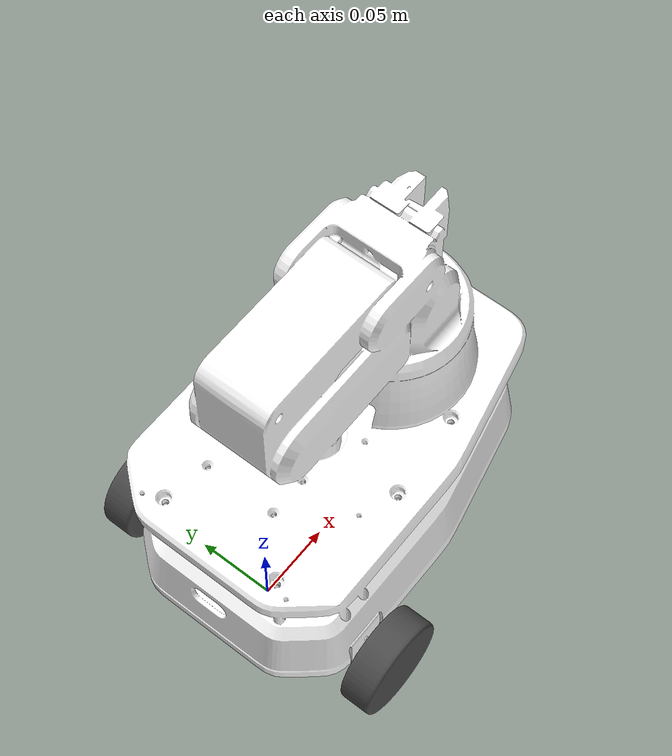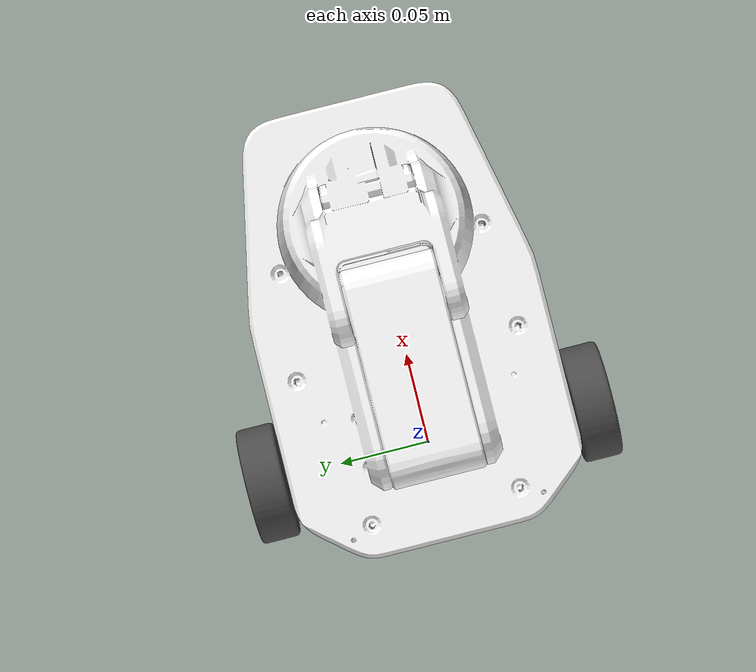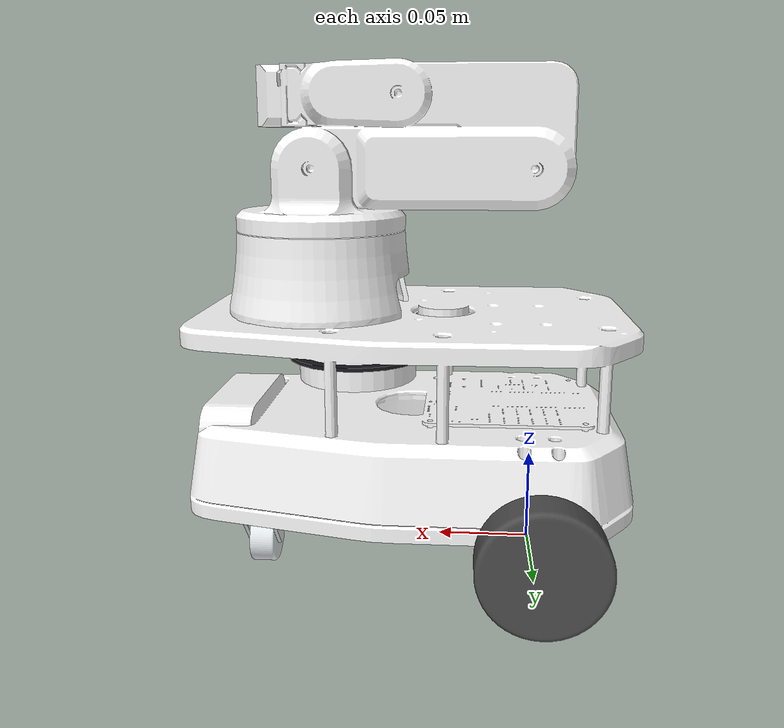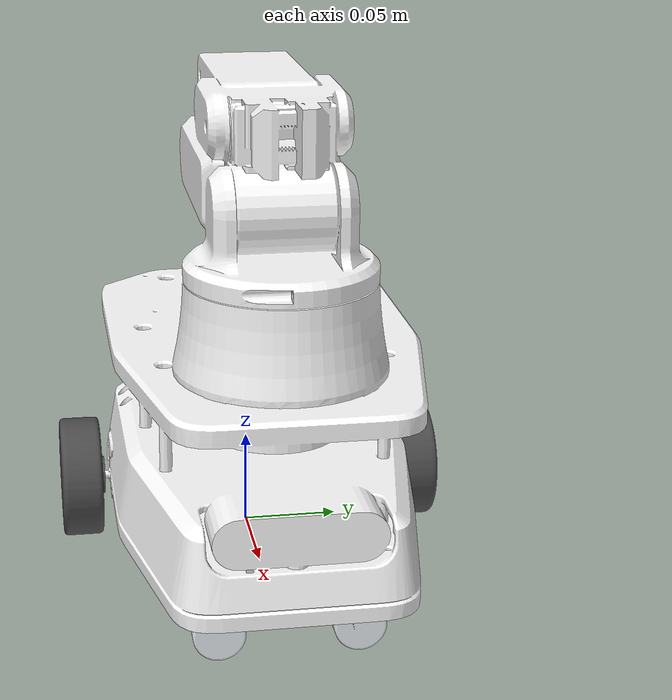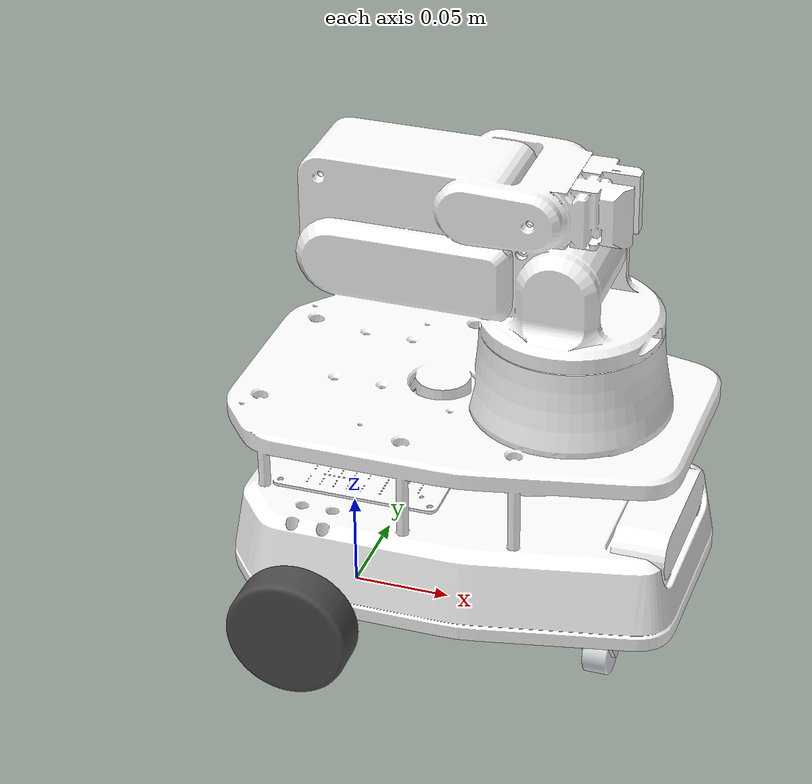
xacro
<?xml version="1.0"?>

<robot name="xc_urdf" xmlns:xacro="http://www.ros.org/wiki/xacro">

  <!-- ==========================================================================
       物理参数：量完改这里，整个模型跟着变
       ========================================================================== -->

  <!-- ── 后驱动轮（差速轮，一对）────────────────────────────────────────────── -->
  <xacro:property name="wheel_radius"     value="0.0315"/>  <!-- 半径。CAD 实测直径 63mm -->
  <xacro:property name="wheel_width"      value="0.023"/>   <!-- 轮宽 23mm -->
  <xacro:property name="wheel_separation" value="0.180"/>   <!-- 左右轮中心距 = 轮距。
                                                                 文档里长期标着「没测过」，
                                                                 这是 CAD 里的值，仍建议推车复核 -->

  <!-- ── 前小轮（一对，从动）────────────────────────────────────────────────── -->
  <xacro:property name="front_wheel_radius" value="0.0125"/> <!-- 滚动半径。轴心离地 12.5mm -->
  <xacro:property name="front_wheel_x"      value="0.142"/>  <!-- 在轴心中点前面的距离 -->
  <xacro:property name="front_wheel_y"      value="0.0335"/> <!-- 左右各偏多少 -->

  <!-- ── base_link 的原点位置 ──────────────────────────────────────────────────
       定在「两驱动轮轴心连线的中点」的**正下方地面上**。x/y 直接为 0（轴心就是
       原点），唯一需要换算的是 CAD 坐标系相对它的偏移。                        -->
  <xacro:property name="chassis_offset_x" value="0.065"/>   <!-- CAD 原点在 base_link 的 +x 方 -->
  <xacro:property name="chassis_offset_z" value="-0.005"/>  <!-- CAD 原点比地面低 5mm -->

  <xacro:property name="laser_x"    value="0.0956"/>
  <xacro:property name="laser_y"    value="0.0"/>
  <xacro:property name="laser_z"    value="0.1075"/>
  <xacro:property name="laser_roll" value="${pi}"/>
  <xacro:property name="laser_yaw"  value="0.0"/>

  <!-- ==========================================================================
       base_link：不画东西的纯参考系
       ========================================================================== -->

  <link name="base_link"/>

  <!-- ==========================================================================
       车体：SolidWorks 的 base_link.STL
       ========================================================================== -->

  <link name="chassis">
    <visual>
      <!-- +0.11 是 SolidWorks 原件里就有的视觉偏移，实测正确：加上它轮子才着地 -->
      <origin xyz="0 0 0.11" rpy="0 0 0"/>
      <geometry>
        <mesh filename="package://xc_urdf/meshes/base_link.STL"/>
      </geometry>
      <material name="chassis_gray">
        <color rgba="1 1 1 1"/>
      </material>
    </visual>
    <collision>
      <origin xyz="0 0 0.11" rpy="0 0 0"/>
      <geometry>
        <mesh filename="package://xc_urdf/meshes/base_link.STL"/>
      </geometry>
    </collision>
    <!-- 惯性块原样搬过来。chassis 的坐标系就是 CAD 坐标系，数字不用换算。
         注意：这是 SolidWorks 算出来的近似值，拿来做 rviz 可视化足够了；
         真要上物理仿真得重新标。 -->
    <inertial>
      <origin xyz="-0.00197167480169581 -0.000122347580332399 0.00828700108635093" rpy="0 0 0"/>
      <mass value="1.38347431367086"/>
      <inertia ixx="0.00146738564724886" ixy="-3.42395260263996E-06" ixz="-1.50060721917905E-05"
               iyy="0.00272256204808231"   iyz="2.6934971330369E-06"  izz="0.00387596146259179"/>
    </inertial>
  </link>

  <joint name="chassis_joint" type="fixed">
    <origin xyz="${chassis_offset_x} 0 ${chassis_offset_z}" rpy="0 0 0"/>
    <parent link="base_link"/>
    <child link="chassis"/>
  </joint>

  <!-- ==========================================================================
       后驱动轮 —— 差速转向的两个轮子，可动
       ========================================================================== -->

  <!-- 左轮 -->
  <link name="wheel_left">
    <visual>
      <origin xyz="0 0 0" rpy="0 0 0"/>
      <geometry>
        <mesh filename="package://xc_urdf/meshes/Empty_Link3.STL"/>
      </geometry>
      <material name="wheel_dark">
        <color rgba="0.298039215686275 0.298039215686275 0.298039215686275 1"/>
      </material>
    </visual>
    <collision>
      <origin xyz="0 0 0" rpy="0 0 0"/>
      <geometry>
        <mesh filename="package://xc_urdf/meshes/Empty_Link3.STL"/>
      </geometry>
    </collision>
    <inertial>
      <origin xyz="0.000000319437892623564 -0.0000893711913050599 0.000000230903450500544" rpy="0 0 0"/>
      <mass value="0.0758772106233843"/>
      <inertia ixx="2.14000230411095E-05"  ixy="-8.97611419511614E-12" ixz="-7.09406194543137E-10"
               iyy="3.71665775309804E-05"  iyz="5.99767599321799E-12"  izz="2.14003516816011E-05"/>
    </inertial>
  </link>

  <joint name="wheel_left_joint" type="continuous">
    <!-- 轴心就在 base_link 原点的正上方一个轮半径处 -->
    <origin xyz="0 ${wheel_separation/2} ${wheel_radius}" rpy="0 0 0"/>
    <parent link="base_link"/>
    <child link="wheel_left"/>
    <!-- 绕 y 转 = 向前滚。正转车前进，和固件同号 -->
    <axis xyz="0 1 0"/>
  </joint>

  <!-- 右轮 -->
  <link name="wheel_right">
    <visual>
      <origin xyz="0 0 0" rpy="1.5707963267949 0 0"/>
      <geometry>
        <mesh filename="package://xc_urdf/meshes/Empty_Link4.STL"/>
      </geometry>
      <material name="wheel_dark">
        <color rgba="0.298039215686275 0.298039215686275 0.298039215686275 1"/>
      </material>
    </visual>
    <collision>
      <origin xyz="0 0 0" rpy="1.5707963267949 0 0"/>
      <geometry>
        <mesh filename="package://xc_urdf/meshes/Empty_Link4.STL"/>
      </geometry>
    </collision>
    <inertial>
      <origin xyz="0.000000289018891222459 0.00000026800196192096 -0.0000893711913050599" rpy="0 0 0"/>
      <mass value="0.0758772106233844"/>
      <inertia ixx="2.14000664475817E-05"  ixy="-7.1807948817931E-10"  ixz="4.12261279556443E-12"
               iyy="2.14003082751291E-05"  iyz="-9.977314567107E-12"   izz="3.71665775309805E-05"/>
    </inertial>
  </link>

  <joint name="wheel_right_joint" type="continuous">
    <origin xyz="0 ${-wheel_separation/2} ${wheel_radius}" rpy="0 0 0"/>
    <parent link="base_link"/>
    <child link="wheel_right"/>
    <axis xyz="0 1 0"/>
  </joint>

  <link name="front_wheel_left">
    <visual>
      <origin xyz="0 0 0" rpy="0 0 0"/>
      <geometry>
        <mesh filename="package://xc_urdf/meshes/Empty_Link1.STL"/>
      </geometry>
      <material name="front_wheel_gray">
        <color rgba="0.898039215686275 0.917647058823529 0.929411764705882 1"/>
      </material>
    </visual>
    <collision>
      <origin xyz="0 0 0" rpy="0 0 0"/>
      <geometry>
        <mesh filename="package://xc_urdf/meshes/Empty_Link1.STL"/>
      </geometry>
    </collision>
    <inertial>
      <origin xyz="-0.000000000762788679442572 0.00158038832427439 0.00599232695785889" rpy="0 0 0"/>
      <mass value="0.0272846657527921"/>
      <inertia ixx="4.07334324951061E-06" ixy="3.91827579527818E-14" ixz="3.98509869637933E-13"
               iyy="3.82468808639562E-06" iyz="-5.10828322956161E-07" izz="2.61087120188963E-06"/>
    </inertial>
  </link>

  <joint name="front_wheel_left_joint" type="fixed">
    <origin xyz="${front_wheel_x} ${front_wheel_y} ${front_wheel_radius}" rpy="0 0 0"/>
    <parent link="base_link"/>
    <child link="front_wheel_left"/>
  </joint>

  <link name="front_wheel_right">
    <visual>
      <origin xyz="0 0 0" rpy="0 0 0"/>
      <geometry>
        <mesh filename="package://xc_urdf/meshes/Empty_Link2.STL"/>
      </geometry>
      <material name="front_wheel_gray">
        <color rgba="0.898039215686275 0.917647058823529 0.929411764705882 1"/>
      </material>
    </visual>
    <collision>
      <origin xyz="0 0 0" rpy="0 0 0"/>
      <geometry>
        <mesh filename="package://xc_urdf/meshes/Empty_Link2.STL"/>
      </geometry>
    </collision>
    <inertial>
      <origin xyz="0.00000000076278881822045 -0.00158038832427439 0.00599232695785888" rpy="0 0 0"/>
      <mass value="0.0272846657527921"/>
      <inertia ixx="4.0733432495106E-06"  ixy="3.91827703134016E-14" ixz="-3.98509904538453E-13"
               iyy="3.82468808639562E-06" iyz="5.10828322956161E-07" izz="2.61087120188962E-06"/>
    </inertial>
  </link>

  <joint name="front_wheel_right_joint" type="fixed">
    <origin xyz="${front_wheel_x} ${-front_wheel_y} ${front_wheel_radius}" rpy="0 0 0"/>
    <parent link="base_link"/>
    <child link="front_wheel_right"/>
  </joint>

  <link name="laser">
    <visual>
      <origin xyz="0 0 0" rpy="0 0 0"/>
      <geometry>
        <cylinder radius="0.038" length="0.002"/>
      </geometry>
      <material name="laser_black">
        <color rgba="0.1 0.1 0.12 1"/>
      </material>
    </visual>
  </link>

  <joint name="laser_joint" type="fixed">
    <origin xyz="${laser_x} ${laser_y} ${laser_z}" rpy="${laser_roll} 0 ${laser_yaw}"/>
    <parent link="base_link"/>
    <child link="laser"/>
  </joint>

</robot>
